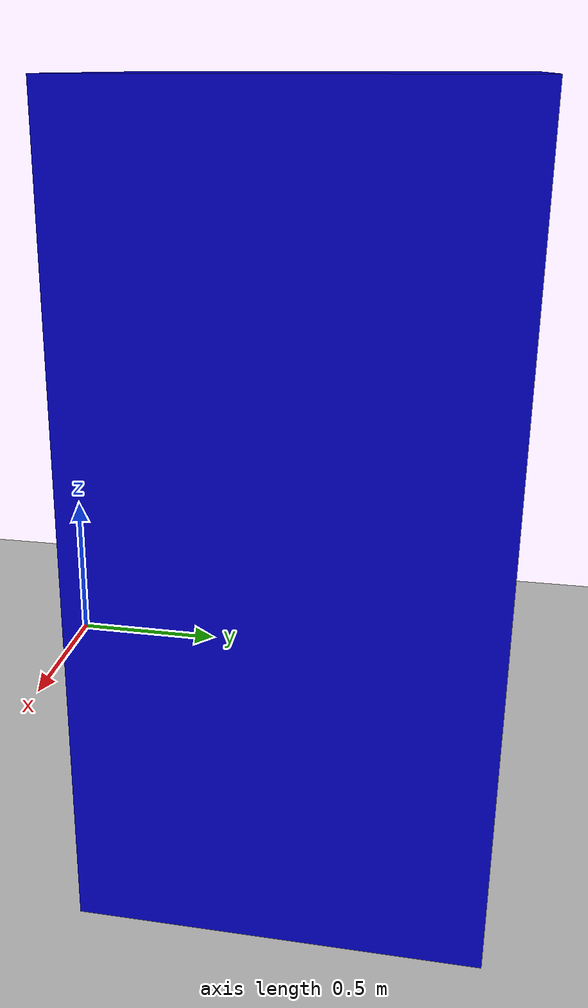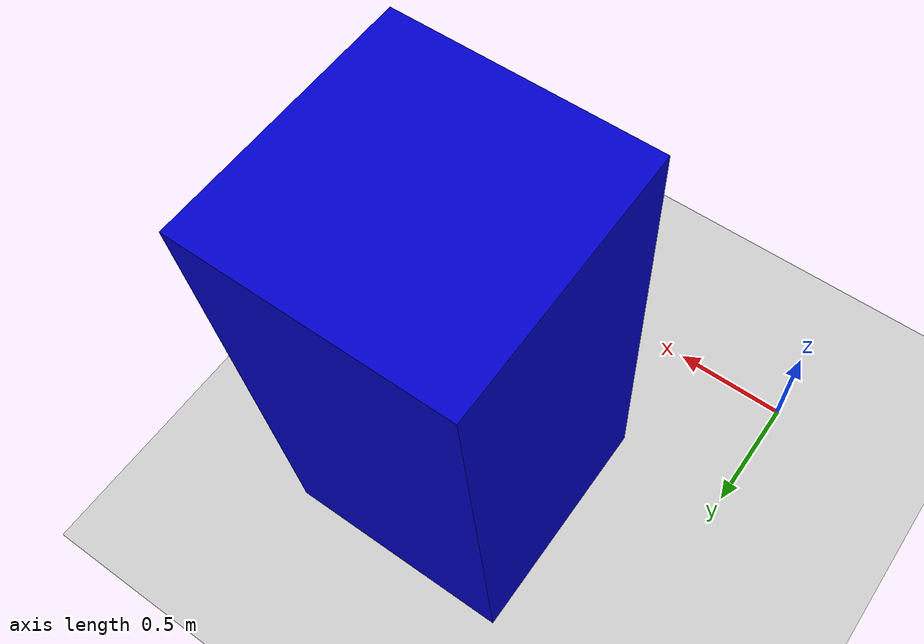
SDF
<?xml version="1.0" ?>
<sdf version="1.9">

    <world name="world1"> <!-- Note that the cameras are hard coded to only work with worlds name 'world1' -->
      <scene>
      <ambient>.4 .4 .4</ambient>
      <sky></sky>
    </scene>

	<plugin
	  filename="gz-sim-physics-system"
	  name="gz::sim::systems::Physics">
	</plugin>
	<plugin
	  filename="gz-sim-scene-broadcaster-system"
	  name="gz::sim::systems::SceneBroadcaster">
	</plugin>
	<plugin
		filename="gz-sim-user-commands-system"
		name="gz::sim::systems::UserCommands">
        </plugin>
	<plugin filename="gz-sim-imu-system"
			name="gz::sim::systems::Imu">
	</plugin>
	<plugin
		filename="gz-sim-navsat-system"
		name="gz::sim::systems::NavSat">
	</plugin>

	<spherical_coordinates>
            <surface_model>EARTH_WGS84</surface_model>
            <world_frame_orientation>ENU</world_frame_orientation>
            <latitude_deg>-22.986687</latitude_deg>
            <longitude_deg>-43.202501</longitude_deg>
            <elevation>0</elevation>
            <heading_deg>0</heading_deg>
        </spherical_coordinates>
        <light name="sun" type="directional">
	      <cast_shadows>true</cast_shadows>
	      <pose>0 0 10 0 0 0</pose>
	      <diffuse>0.8 0.8 0.8 1</diffuse>
	      <specular>0.2 0.2 0.2 1</specular>
	      <attenuation>
		<range>1000</range>
		<constant>0.9</constant>
		<linear>0.01</linear>
		<quadratic>0.001</quadratic>
	      </attenuation>
	      <direction>-0.5 0.1 -0.9</direction>
	    </light>

    	<model name="ground_plane">
	      <static>true</static>
	      <link name="link">
		<collision name="collision">
		  <geometry>
		    <plane>
		      <normal>0 0 1</normal>
		      <size>100 100</size>
		    </plane>
		  </geometry>
		</collision>
		<visual name="visual">
		  <geometry>
		    <plane>
		      <normal>0 0 1</normal>
		      <size>100 100</size>
		    </plane>
		  </geometry>
		  <material>
		    <ambient>0.8 0.8 0.8 1</ambient>
		    <diffuse>0.8 0.8 0.8 1</diffuse>
		    <specular>0.8 0.8 0.8 1</specular>
		  </material>
		</visual>
	      </link>

	</model>
	<model name="block">
		<pose>1 1 1 0 0 0</pose>
		<static>true</static>
		<link name="link">
			<collision name="collision">
				<geometry>
					<box>
						<size>1 1 2</size>
					</box>
				</geometry>
			</collision>
			<visual name="visual">
				<geometry>
					<box>
						<size>1 1 2</size>
					</box>
				</geometry>
				<material>
					<ambient>.0.0 0.0 0.8 1</ambient>
					<diffuse>0.0 0.0 0.8 1</diffuse>
					<specular>0.0 0.0 0.8 1</specular>
				</material>
			</visual>
		</link>
	</model>
    </world>
</sdf>
